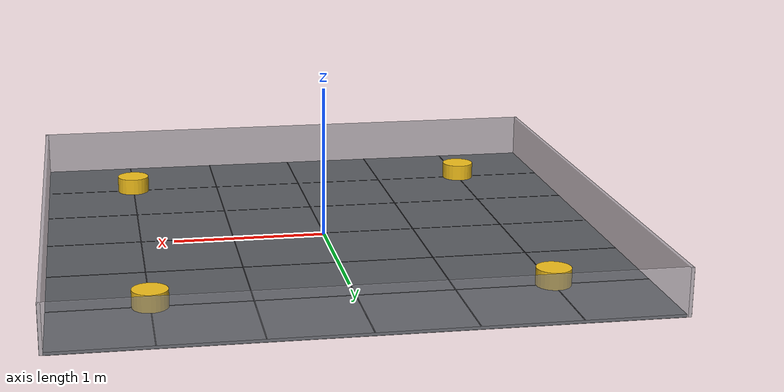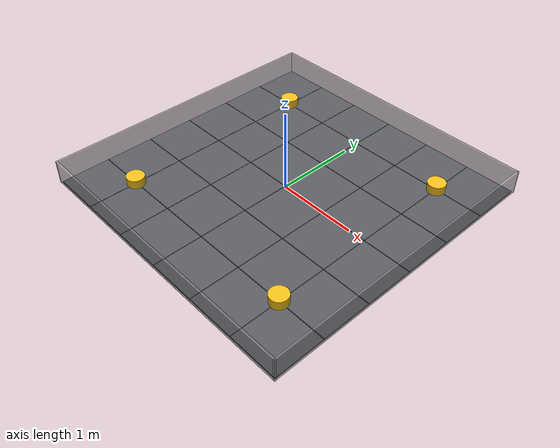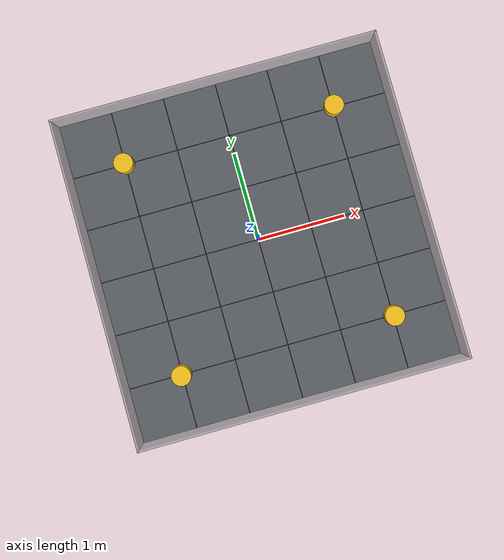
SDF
<?xml version="1.0"?>
<sdf version="1.9">
  <world name="vrc_field">
    <physics name="1ms" type="ode">
      <max_step_size>0.001</max_step_size>
      <real_time_factor>1.0</real_time_factor>
      <real_time_update_rate>1000</real_time_update_rate>
    </physics>
    <plugin filename="gz-sim-physics-system" name="gz::sim::systems::Physics"/>
    <plugin filename="gz-sim-user-commands-system" name="gz::sim::systems::UserCommands"/>
    <plugin filename="gz-sim-scene-broadcaster-system" name="gz::sim::systems::SceneBroadcaster"/>
    <plugin filename="gz-sim-imu-system" name="gz::sim::systems::Imu"/>
    <plugin filename="gz-sim-contact-system" name="gz::sim::systems::Contact"/>

    <gravity>0 0 -9.81</gravity>
    <scene>
      <ambient>0.6 0.6 0.6 1</ambient>
      <background>0.05 0.06 0.08 1</background>
      <grid>false</grid>
    </scene>
    <light type="directional" name="sun">
      <cast_shadows>true</cast_shadows>
      <pose>0 0 10 0 0 0</pose>
      <diffuse>0.9 0.9 0.9 1</diffuse>
      <direction>-0.3 0.2 -0.9</direction>
    </light>

    <!-- 12 ft square floor: 3.6576 m -->
    <model name="field_floor">
      <static>true</static>
      <link name="floor">
        <collision name="c">
          <geometry><box><size>3.6576 3.6576 0.02</size></box></geometry>
          <surface><friction><ode><mu>1.0</mu><mu2>1.0</mu2></ode></friction></surface>
        </collision>
        <visual name="v">
          <geometry><box><size>3.6576 3.6576 0.02</size></box></geometry>
          <material><ambient>0.35 0.36 0.38 1</ambient><diffuse>0.35 0.36 0.38 1</diffuse></material>
        </visual>
        <!-- tile seams every 2 ft -->
        <visual name="seams_x1"><pose>-0.6096 0 0.011 0 0 0</pose><geometry><box><size>0.006 3.6576 0.001</size></box></geometry><material><diffuse>0.2 0.2 0.22 1</diffuse></material></visual>
        <visual name="seams_x2"><pose>0.6096 0 0.011 0 0 0</pose><geometry><box><size>0.006 3.6576 0.001</size></box></geometry><material><diffuse>0.2 0.2 0.22 1</diffuse></material></visual>
        <visual name="seams_x3"><pose>-1.2192 0 0.011 0 0 0</pose><geometry><box><size>0.006 3.6576 0.001</size></box></geometry><material><diffuse>0.2 0.2 0.22 1</diffuse></material></visual>
        <visual name="seams_x4"><pose>1.2192 0 0.011 0 0 0</pose><geometry><box><size>0.006 3.6576 0.001</size></box></geometry><material><diffuse>0.2 0.2 0.22 1</diffuse></material></visual>
        <visual name="seams_x5"><pose>0 0 0.011 0 0 0</pose><geometry><box><size>0.006 3.6576 0.001</size></box></geometry><material><diffuse>0.2 0.2 0.22 1</diffuse></material></visual>
        <visual name="seams_y1"><pose>0 -0.6096 0.011 0 0 0</pose><geometry><box><size>3.6576 0.006 0.001</size></box></geometry><material><diffuse>0.2 0.2 0.22 1</diffuse></material></visual>
        <visual name="seams_y2"><pose>0 0.6096 0.011 0 0 0</pose><geometry><box><size>3.6576 0.006 0.001</size></box></geometry><material><diffuse>0.2 0.2 0.22 1</diffuse></material></visual>
        <visual name="seams_y3"><pose>0 -1.2192 0.011 0 0 0</pose><geometry><box><size>3.6576 0.006 0.001</size></box></geometry><material><diffuse>0.2 0.2 0.22 1</diffuse></material></visual>
        <visual name="seams_y4"><pose>0 1.2192 0.011 0 0 0</pose><geometry><box><size>3.6576 0.006 0.001</size></box></geometry><material><diffuse>0.2 0.2 0.22 1</diffuse></material></visual>
        <visual name="seams_y5"><pose>0 0 0.011 0 0 0</pose><geometry><box><size>3.6576 0.006 0.001</size></box></geometry><material><diffuse>0.2 0.2 0.22 1</diffuse></material></visual>
      </link>
    </model>

    <!-- perimeter wall, 0.3 m tall -->
    <model name="field_perimeter">
      <static>true</static>
      <link name="walls">
        <collision name="n"><pose>0 1.8388 0.15 0 0 0</pose><geometry><box><size>3.7 0.02 0.3</size></box></geometry></collision>
        <visual name="nv"><pose>0 1.8388 0.15 0 0 0</pose><geometry><box><size>3.7 0.02 0.3</size></box></geometry><material><diffuse>0.55 0.55 0.58 0.6</diffuse></material></visual>
        <collision name="s"><pose>0 -1.8388 0.15 0 0 0</pose><geometry><box><size>3.7 0.02 0.3</size></box></geometry></collision>
        <visual name="sv"><pose>0 -1.8388 0.15 0 0 0</pose><geometry><box><size>3.7 0.02 0.3</size></box></geometry><material><diffuse>0.55 0.55 0.58 0.6</diffuse></material></visual>
        <collision name="e"><pose>1.8388 0 0.15 0 0 0</pose><geometry><box><size>0.02 3.7 0.3</size></box></geometry></collision>
        <visual name="ev"><pose>1.8388 0 0.15 0 0 0</pose><geometry><box><size>0.02 3.7 0.3</size></box></geometry><material><diffuse>0.55 0.55 0.58 0.6</diffuse></material></visual>
        <collision name="w"><pose>-1.8388 0 0.15 0 0 0</pose><geometry><box><size>0.02 3.7 0.3</size></box></geometry></collision>
        <visual name="wv"><pose>-1.8388 0 0.15 0 0 0</pose><geometry><box><size>0.02 3.7 0.3</size></box></geometry><material><diffuse>0.55 0.55 0.58 0.6</diffuse></material></visual>
      </link>
    </model>

    <!-- mobile goals (hexagonal-ish: cylinder stand-ins), 1.2 kg, out of the demo route -->
    <model name="mogo_1"><pose>1.2192 1.2192 0.06 0 0 0</pose><link name="l"><inertial><mass>1.2</mass><inertia><ixx>0.004</ixx><iyy>0.004</iyy><izz>0.006</izz></inertia></inertial><collision name="c"><geometry><cylinder><radius>0.11</radius><length>0.12</length></cylinder></geometry></collision><visual name="v"><geometry><cylinder><radius>0.11</radius><length>0.12</length></cylinder></geometry><material><diffuse>0.95 0.75 0.1 1</diffuse></material></visual></link></model>
    <model name="mogo_2"><pose>-1.2192 1.2192 0.06 0 0 0</pose><link name="l"><inertial><mass>1.2</mass><inertia><ixx>0.004</ixx><iyy>0.004</iyy><izz>0.006</izz></inertia></inertial><collision name="c"><geometry><cylinder><radius>0.11</radius><length>0.12</length></cylinder></geometry></collision><visual name="v"><geometry><cylinder><radius>0.11</radius><length>0.12</length></cylinder></geometry><material><diffuse>0.95 0.75 0.1 1</diffuse></material></visual></link></model>
    <model name="mogo_3"><pose>1.2192 -1.2192 0.06 0 0 0</pose><link name="l"><inertial><mass>1.2</mass><inertia><ixx>0.004</ixx><iyy>0.004</iyy><izz>0.006</izz></inertia></inertial><collision name="c"><geometry><cylinder><radius>0.11</radius><length>0.12</length></cylinder></geometry></collision><visual name="v"><geometry><cylinder><radius>0.11</radius><length>0.12</length></cylinder></geometry><material><diffuse>0.95 0.75 0.1 1</diffuse></material></visual></link></model>
    <model name="mogo_4"><pose>-1.2192 -1.2192 0.06 0 0 0</pose><link name="l"><inertial><mass>1.2</mass><inertia><ixx>0.004</ixx><iyy>0.004</iyy><izz>0.006</izz></inertia></inertial><collision name="c"><geometry><cylinder><radius>0.11</radius><length>0.12</length></cylinder></geometry></collision><visual name="v"><geometry><cylinder><radius>0.11</radius><length>0.12</length></cylinder></geometry><material><diffuse>0.95 0.75 0.1 1</diffuse></material></visual></link></model>
  </world>
</sdf>
